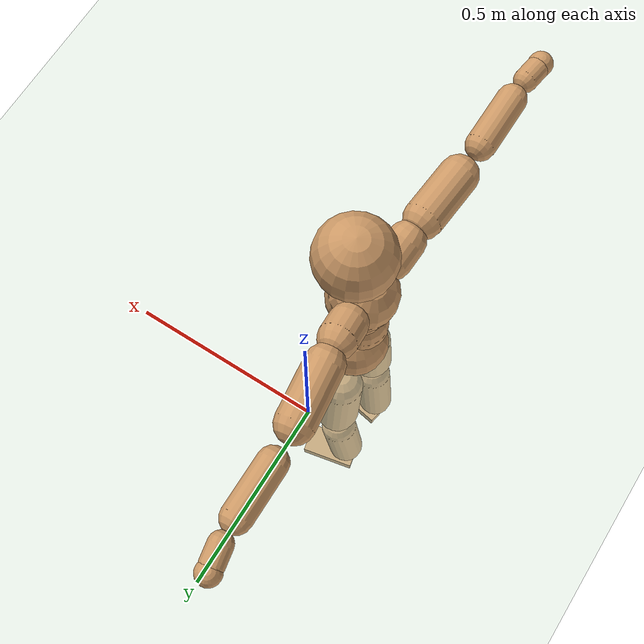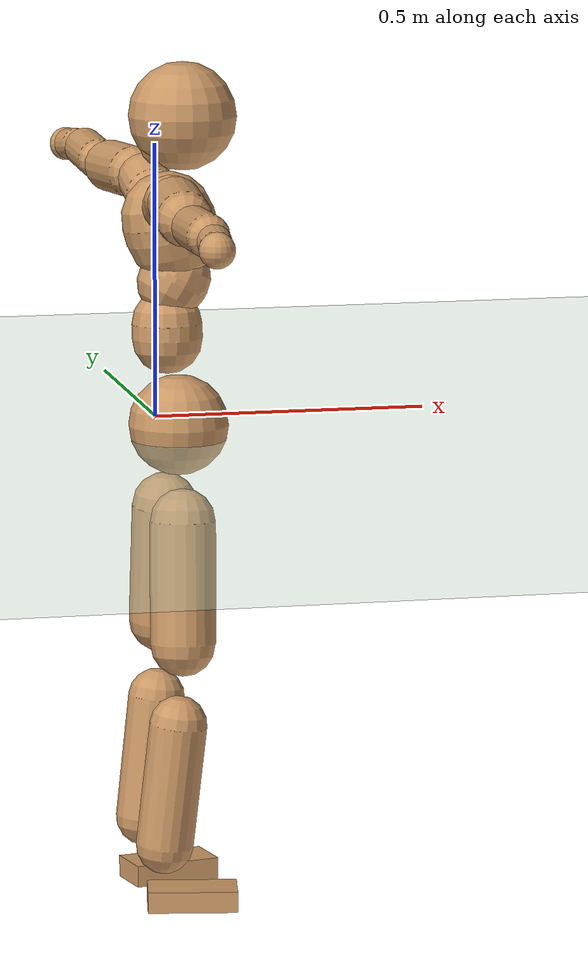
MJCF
<mujoco model="humanoid">
  <compiler coordinate="local"/>
  <default>
    <joint damping="0.0" armature="0.01" stiffness="0.0" limited="true"/>
    <geom conaffinity="1" condim="3" contype="7" margin="0.001" rgba="0.8 0.6 .4 1"/>
  </default>
  <asset>
    <texture type="skybox" builtin="gradient" rgb1=".4 .5 .6" rgb2="0 0 0" width="100" height="100"/>
    <texture builtin="flat" height="1278" mark="cross" markrgb="1 1 1" name="texgeom" random="0.01" rgb1="0.8 0.6 0.4" rgb2="0.8 0.6 0.4" type="cube" width="127"/>
    <texture builtin="checker" height="100" name="texplane" rgb1="0 0 0" rgb2="0.8 0.8 0.8" type="2d" width="100"/>
    <material name="MatPlane" reflectance="0.5" shininess="1" specular="1" texrepeat="60 60" texture="texplane"/>
    <material name="geom" texture="texgeom" texuniform="true"/>
  </asset>
  <worldbody>
    <light cutoff="100" diffuse="1 1 1" dir="-0 0 -1.3" directional="true" exponent="1" pos="0 0 1.3" specular=".1 .1 .1"/>
    <geom conaffinity="1" condim="3" name="floor" pos="0 0 0" rgba="0.8 0.9 0.8 1" size="100 100 .2" type="plane" material="MatPlane"/>
    <body name="Pelvis" pos="-0.0015 -0.2153 0.0239">
      <freejoint name="Pelvis"/>
      <geom type="sphere" contype="1" conaffinity="1" density="500" size="0.0898" pos="0.0000 0.0000 0.0000" name="Pelvis"/>
      <body name="L_Hip" pos="-0.0094 0.069 -0.0894">
        <joint name="L_Hip_x" type="hinge" pos="0 0 0" axis="1 0 0" stiffness="800" damping="80" armature="0.02" range="-180.0000 180.0000"/>
        <joint name="L_Hip_y" type="hinge" pos="0 0 0" axis="0 1 0" stiffness="800" damping="80" armature="0.02" range="-180.0000 180.0000"/>
        <joint name="L_Hip_z" type="hinge" pos="0 0 0" axis="0 0 1" stiffness="800" damping="80" armature="0.02" range="-180.0000 180.0000"/>
        <geom type="capsule" contype="1" conaffinity="1" density="500" fromto="-0.0010 0.0061 -0.0710 -0.0039 0.0243 -0.2841" size="0.0595" name="L_Hip"/>
        <body name="L_Knee" pos="-0.0048 0.0304 -0.3552">
          <joint name="L_Knee_x" type="hinge" pos="0 0 0" axis="1 0 0" stiffness="800" damping="80" armature="0.02" range="-180.0000 180.0000"/>
          <joint name="L_Knee_y" type="hinge" pos="0 0 0" axis="0 1 0" stiffness="800" damping="80" armature="0.02" range="-180.0000 180.0000"/>
          <joint name="L_Knee_z" type="hinge" pos="0 0 0" axis="0 0 1" stiffness="800" damping="80" armature="0.02" range="-180.0000 180.0000"/>
          <geom type="capsule" contype="1" conaffinity="1" density="500" fromto="-0.0084 -0.0022 -0.0740 -0.0335 -0.0089 -0.2960" size="0.0514" name="L_Knee"/>
          <body name="L_Ankle" pos="-0.0419 -0.0112 -0.37">
            <joint name="L_Ankle_x" type="hinge" pos="0 0 0" axis="1 0 0" stiffness="800" damping="80" armature="0.02" range="-180.0000 180.0000"/>
            <joint name="L_Ankle_y" type="hinge" pos="0 0 0" axis="0 1 0" stiffness="800" damping="80" armature="0.02" range="-180.0000 180.0000"/>
            <joint name="L_Ankle_z" type="hinge" pos="0 0 0" axis="0 0 1" stiffness="800" damping="80" armature="0.02" range="-180.0000 180.0000"/>
            <geom type="box" contype="1" conaffinity="1" density="500" pos="0.0555 0.0114 -0.0262" size="0.0792 0.044 0.0194" quat="0.9949 0.0000 0.0000 0.1009" name="L_Ankle"/>
            <body name="L_Toe" pos="0.111 0.0228 -0.0525">
              <joint name="L_Toe_x" type="hinge" pos="0 0 0" axis="1 0 0" stiffness="500" damping="50" armature="0.02" range="-180.0000 180.0000"/>
              <joint name="L_Toe_y" type="hinge" pos="0 0 0" axis="0 1 0" stiffness="500" damping="50" armature="0.02" range="-180.0000 180.0000"/>
              <joint name="L_Toe_z" type="hinge" pos="0 0 0" axis="0 0 1" stiffness="500" damping="50" armature="0.02" range="-180.0000 180.0000"/>
              <geom type="box" contype="1" conaffinity="1" density="500" pos="0.0000 0.0000 0.0258" size="0.0009 0.0022 0.0009" quat="0.9942 0.0000 0.0000 0.1076" name="L_Toe"/>
            </body>
          </body>
        </body>
      </body>
      <body name="R_Hip" pos="-0.0063 -0.0667 -0.0887">
        <joint name="R_Hip_x" type="hinge" pos="0 0 0" axis="1 0 0" stiffness="800" damping="80" armature="0.02" range="-180.0000 180.0000"/>
        <joint name="R_Hip_y" type="hinge" pos="0 0 0" axis="0 1 0" stiffness="800" damping="80" armature="0.02" range="-180.0000 180.0000"/>
        <joint name="R_Hip_z" type="hinge" pos="0 0 0" axis="0 0 1" stiffness="800" damping="80" armature="0.02" range="-180.0000 180.0000"/>
        <geom type="capsule" contype="1" conaffinity="1" density="500" fromto="-0.0015 -0.0070 -0.0725 -0.0060 -0.0282 -0.2899" size="0.0588" name="R_Hip"/>
        <body name="R_Knee" pos="-0.0075 -0.0352 -0.3624">
          <joint name="R_Knee_x" type="hinge" pos="0 0 0" axis="1 0 0" stiffness="800" damping="80" armature="0.02" range="-180.0000 180.0000"/>
          <joint name="R_Knee_y" type="hinge" pos="0 0 0" axis="0 1 0" stiffness="800" damping="80" armature="0.02" range="-180.0000 180.0000"/>
          <joint name="R_Knee_z" type="hinge" pos="0 0 0" axis="0 0 1" stiffness="800" damping="80" armature="0.02" range="-180.0000 180.0000"/>
          <geom type="capsule" contype="1" conaffinity="1" density="500" fromto="-0.0080 0.0027 -0.0740 -0.0321 0.0110 -0.2961" size="0.0517" name="R_Knee"/>
          <body name="R_Ankle" pos="-0.0402 0.0137 -0.3701">
            <joint name="R_Ankle_x" type="hinge" pos="0 0 0" axis="1 0 0" stiffness="800" damping="80" armature="0.02" range="-180.0000 180.0000"/>
            <joint name="R_Ankle_y" type="hinge" pos="0 0 0" axis="0 1 0" stiffness="800" damping="80" armature="0.02" range="-180.0000 180.0000"/>
            <joint name="R_Ankle_z" type="hinge" pos="0 0 0" axis="0 0 1" stiffness="800" damping="80" armature="0.02" range="-180.0000 180.0000"/>
            <geom type="box" contype="1" conaffinity="1" density="500" pos="0.0571 -0.0101 -0.0224" size="0.0804 0.0445 0.019" quat="0.9962 0.0000 0.0000 -0.0873" name="R_Ankle"/>
            <body name="R_Toe" pos="0.1141 -0.0202 -0.0448">
              <joint name="R_Toe_x" type="hinge" pos="0 0 0" axis="1 0 0" stiffness="500" damping="50" armature="0.02" range="-180.0000 180.0000"/>
              <joint name="R_Toe_y" type="hinge" pos="0 0 0" axis="0 1 0" stiffness="500" damping="50" armature="0.02" range="-180.0000 180.0000"/>
              <joint name="R_Toe_z" type="hinge" pos="0 0 0" axis="0 0 1" stiffness="500" damping="50" armature="0.02" range="-180.0000 180.0000"/>
              <geom type="box" contype="1" conaffinity="1" density="500" pos="0.0000 0.0000 0.0243" size="0.0008 0.0022 0.001" quat="0.9970 0.0000 0.0000 -0.0775" name="R_Toe"/>
            </body>
          </body>
        </body>
      </body>
      <body name="Torso" pos="-0.0199 -0.0025 0.1029">
        <joint name="Torso_x" type="hinge" pos="0 0 0" axis="1 0 0" stiffness="1000" damping="100" armature="0.02" range="-180.0000 180.0000"/>
        <joint name="Torso_y" type="hinge" pos="0 0 0" axis="0 1 0" stiffness="1000" damping="100" armature="0.02" range="-180.0000 180.0000"/>
        <joint name="Torso_z" type="hinge" pos="0 0 0" axis="0 0 1" stiffness="1000" damping="100" armature="0.02" range="-180.0000 180.0000"/>
        <geom type="capsule" contype="1" conaffinity="1" density="500" fromto="-0.0006 0.0024 0.0801 -0.0004 0.0016 0.0534" size="0.062868" name="Torso"/>
        <body name="Spine" pos="-0.0011 0.0041 0.1334">
          <joint name="Spine_x" type="hinge" pos="0 0 0" axis="1 0 0" stiffness="1000" damping="100" armature="0.02" range="-180.0000 180.0000"/>
          <joint name="Spine_y" type="hinge" pos="0 0 0" axis="0 1 0" stiffness="1000" damping="100" armature="0.02" range="-180.0000 180.0000"/>
          <joint name="Spine_z" type="hinge" pos="0 0 0" axis="0 0 1" stiffness="1000" damping="100" armature="0.02" range="-180.0000 180.0000"/>
          <geom type="capsule" contype="1" conaffinity="1" density="500" fromto="0.0167 0.0012 0.0297 0.0111 0.0008 0.0198" size="0.06324" name="Spine"/>
          <body name="Chest" pos="0.0278 0.0019 0.0496">
            <joint name="Chest_x" type="hinge" pos="0 0 0" axis="1 0 0" stiffness="1000" damping="100" armature="0.02" range="-180.0000 180.0000"/>
            <joint name="Chest_y" type="hinge" pos="0 0 0" axis="0 1 0" stiffness="1000" damping="100" armature="0.02" range="-180.0000 180.0000"/>
            <joint name="Chest_z" type="hinge" pos="0 0 0" axis="0 0 1" stiffness="1000" damping="100" armature="0.02" range="-180.0000 180.0000"/>
            <geom type="capsule" contype="1" conaffinity="1" density="500" fromto="-0.0244 -0.0009 0.0857 -0.0163 -0.0006 0.0571" size="0.083607" name="Chest"/>
            <body name="Neck" pos="-0.0472 -0.0026 0.2026">
              <joint name="Neck_x" type="hinge" pos="0 0 0" axis="1 0 0" stiffness="500" damping="50" armature="0.02" range="-180.0000 180.0000"/>
              <joint name="Neck_y" type="hinge" pos="0 0 0" axis="0 1 0" stiffness="500" damping="50" armature="0.02" range="-180.0000 180.0000"/>
              <joint name="Neck_z" type="hinge" pos="0 0 0" axis="0 0 1" stiffness="500" damping="50" armature="0.02" range="-180.0000 180.0000"/>
              <geom type="capsule" contype="1" conaffinity="1" density="500" fromto="0.0100 0.0008 0.0128 0.0399 0.0031 0.0511" size="0.036828" name="Neck"/>
              <body name="Head" pos="0.0499 0.0039 0.0638">
                <joint name="Head_x" type="hinge" pos="0 0 0" axis="1 0 0" stiffness="500" damping="50" armature="0.02" range="-180.0000 180.0000"/>
                <joint name="Head_y" type="hinge" pos="0 0 0" axis="0 1 0" stiffness="500" damping="50" armature="0.02" range="-180.0000 180.0000"/>
                <joint name="Head_z" type="hinge" pos="0 0 0" axis="0 0 1" stiffness="500" damping="50" armature="0.02" range="-180.0000 180.0000"/>
                <geom type="sphere" contype="1" conaffinity="1" density="500" size="0.0965" pos="0.0000 0.0000 0.0000" name="Head"/>
              </body>
            </body>
            <body name="L_Thorax" pos="-0.0349 0.0714 0.114">
              <joint name="L_Thorax_x" type="hinge" pos="0 0 0" axis="1 0 0" stiffness="500" damping="50" armature="0.02" range="-180.0000 180.0000"/>
              <joint name="L_Thorax_y" type="hinge" pos="0 0 0" axis="0 1 0" stiffness="500" damping="50" armature="0.02" range="-180.0000 180.0000"/>
              <joint name="L_Thorax_z" type="hinge" pos="0 0 0" axis="0 0 1" stiffness="500" damping="50" armature="0.02" range="-180.0000 180.0000"/>
              <geom type="capsule" contype="1" conaffinity="1" density="500" fromto="-0.0013 0.0161 0.0059 -0.0053 0.0646 0.0235" size="0.047" name="L_Thorax"/>
              <body name="L_Shoulder" pos="-0.0066 0.0807 0.0294">
                <joint name="L_Shoulder_x" type="hinge" pos="0 0 0" axis="1 0 0" stiffness="500" damping="50" armature="0.02" range="-720.0000 720.0000"/>
                <joint name="L_Shoulder_y" type="hinge" pos="0 0 0" axis="0 1 0" stiffness="500" damping="50" armature="0.02" range="-720.0000 720.0000"/>
                <joint name="L_Shoulder_z" type="hinge" pos="0 0 0" axis="0 0 1" stiffness="500" damping="50" armature="0.02" range="-720.0000 720.0000"/>
                <geom type="capsule" contype="1" conaffinity="1" density="500" fromto="-0.0053 0.0478 -0.0020 -0.0211 0.1912 -0.0081" size="0.0471" name="L_Shoulder"/>
                <body name="L_Elbow" pos="-0.0264 0.239 -0.0102">
                  <joint name="L_Elbow_x" type="hinge" pos="0 0 0" axis="1 0 0" stiffness="500" damping="50" armature="0.02" range="-720.0000 720.0000"/>
                  <joint name="L_Elbow_y" type="hinge" pos="0 0 0" axis="0 1 0" stiffness="500" damping="50" armature="0.02" range="-720.0000 720.0000"/>
                  <joint name="L_Elbow_z" type="hinge" pos="0 0 0" axis="0 0 1" stiffness="500" damping="50" armature="0.02" range="-720.0000 720.0000"/>
                  <geom type="capsule" contype="1" conaffinity="1" density="500" fromto="-0.0001 0.0453 0.0016 -0.0004 0.1814 0.0063" size="0.037" name="L_Elbow"/>
                  <body name="L_Wrist" pos="-0.0005 0.2267 0.0078">
                    <joint name="L_Wrist_x" type="hinge" pos="0 0 0" axis="1 0 0" stiffness="300" damping="30" armature="0.02" range="-180.0000 180.0000"/>
                    <joint name="L_Wrist_y" type="hinge" pos="0 0 0" axis="0 1 0" stiffness="300" damping="30" armature="0.02" range="-180.0000 180.0000"/>
                    <joint name="L_Wrist_z" type="hinge" pos="0 0 0" axis="0 0 1" stiffness="300" damping="30" armature="0.02" range="-180.0000 180.0000"/>
                    <geom type="capsule" contype="1" conaffinity="1" density="500" fromto="-0.0025 0.0152 -0.0018 -0.0101 0.0608 -0.0074" size="0.0288" name="L_Wrist"/>
                    <body name="L_Hand" pos="-0.0127 0.076 -0.0092">
                      <joint name="L_Hand_x" type="hinge" pos="0 0 0" axis="1 0 0" stiffness="300" damping="30" armature="0.02" range="-180.0000 180.0000"/>
                      <joint name="L_Hand_y" type="hinge" pos="0 0 0" axis="0 1 0" stiffness="300" damping="30" armature="0.02" range="-180.0000 180.0000"/>
                      <joint name="L_Hand_z" type="hinge" pos="0 0 0" axis="0 0 1" stiffness="300" damping="30" armature="0.02" range="-180.0000 180.0000"/>
                      <geom type="sphere" contype="1" conaffinity="1" density="500" size="0.0308" pos="0.0000 0.0000 0.0000" name="L_Hand"/>
                    </body>
                  </body>
                </body>
              </body>
            </body>
            <body name="R_Thorax" pos="-0.0398 -0.0733 0.112">
              <joint name="R_Thorax_x" type="hinge" pos="0 0 0" axis="1 0 0" stiffness="500" damping="50" armature="0.02" range="-180.0000 180.0000"/>
              <joint name="R_Thorax_y" type="hinge" pos="0 0 0" axis="0 1 0" stiffness="500" damping="50" armature="0.02" range="-180.0000 180.0000"/>
              <joint name="R_Thorax_z" type="hinge" pos="0 0 0" axis="0 0 1" stiffness="500" damping="50" armature="0.02" range="-180.0000 180.0000"/>
              <geom type="capsule" contype="1" conaffinity="1" density="500" fromto="-0.0018 -0.0169 0.0060 -0.0071 -0.0677 0.0242" size="0.0461" name="R_Thorax"/>
              <body name="R_Shoulder" pos="-0.0089 -0.0846 0.0302">
                <joint name="R_Shoulder_x" type="hinge" pos="0 0 0" axis="1 0 0" stiffness="500" damping="50" armature="0.02" range="-720.0000 720.0000"/>
                <joint name="R_Shoulder_y" type="hinge" pos="0 0 0" axis="0 1 0" stiffness="500" damping="50" armature="0.02" range="-720.0000 720.0000"/>
                <joint name="R_Shoulder_z" type="hinge" pos="0 0 0" axis="0 0 1" stiffness="500" damping="50" armature="0.02" range="-720.0000 720.0000"/>
                <geom type="capsule" contype="1" conaffinity="1" density="500" fromto="-0.0038 -0.0465 -0.0022 -0.0152 -0.1861 -0.0087" size="0.0482" name="R_Shoulder"/>
                <body name="R_Elbow" pos="-0.019 -0.2326 -0.0109">
                  <joint name="R_Elbow_x" type="hinge" pos="0 0 0" axis="1 0 0" stiffness="500" damping="50" armature="0.02" range="-720.0000 720.0000"/>
                  <joint name="R_Elbow_y" type="hinge" pos="0 0 0" axis="0 1 0" stiffness="500" damping="50" armature="0.02" range="-720.0000 720.0000"/>
                  <joint name="R_Elbow_z" type="hinge" pos="0 0 0" axis="0 0 1" stiffness="500" damping="50" armature="0.02" range="-720.0000 720.0000"/>
                  <geom type="capsule" contype="1" conaffinity="1" density="500" fromto="-0.0009 -0.0467 0.0015 -0.0034 -0.1866 0.0059" size="0.037" name="R_Elbow"/>
                  <body name="R_Wrist" pos="-0.0043 -0.2333 0.0073">
                    <joint name="R_Wrist_x" type="hinge" pos="0 0 0" axis="1 0 0" stiffness="300" damping="30" armature="0.02" range="-180.0000 180.0000"/>
                    <joint name="R_Wrist_y" type="hinge" pos="0 0 0" axis="0 1 0" stiffness="300" damping="30" armature="0.02" range="-180.0000 180.0000"/>
                    <joint name="R_Wrist_z" type="hinge" pos="0 0 0" axis="0 0 1" stiffness="300" damping="30" armature="0.02" range="-180.0000 180.0000"/>
                    <geom type="capsule" contype="1" conaffinity="1" density="500" fromto="-0.0020 -0.0152 -0.0014 -0.0078 -0.0608 -0.0054" size="0.0293" name="R_Wrist"/>
                    <body name="R_Hand" pos="-0.0098 -0.076 -0.0068">
                      <joint name="R_Hand_x" type="hinge" pos="0 0 0" axis="1 0 0" stiffness="300" damping="30" armature="0.02" range="-180.0000 180.0000"/>
                      <joint name="R_Hand_y" type="hinge" pos="0 0 0" axis="0 1 0" stiffness="300" damping="30" armature="0.02" range="-180.0000 180.0000"/>
                      <joint name="R_Hand_z" type="hinge" pos="0 0 0" axis="0 0 1" stiffness="300" damping="30" armature="0.02" range="-180.0000 180.0000"/>
                      <geom type="sphere" contype="1" conaffinity="1" density="500" size="0.0307" pos="0.0000 0.0000 0.0000" name="R_Hand"/>
                    </body>
                  </body>
                </body>
              </body>
            </body>
          </body>
        </body>
      </body>
    </body>
  </worldbody>
  <actuator>
    <motor name="L_Hip_x" joint="L_Hip_x" gear="500"/>
    <motor name="L_Hip_y" joint="L_Hip_y" gear="500"/>
    <motor name="L_Hip_z" joint="L_Hip_z" gear="500"/>
    <motor name="L_Knee_x" joint="L_Knee_x" gear="500"/>
    <motor name="L_Knee_y" joint="L_Knee_y" gear="500"/>
    <motor name="L_Knee_z" joint="L_Knee_z" gear="500"/>
    <motor name="L_Ankle_x" joint="L_Ankle_x" gear="500"/>
    <motor name="L_Ankle_y" joint="L_Ankle_y" gear="500"/>
    <motor name="L_Ankle_z" joint="L_Ankle_z" gear="500"/>
    <motor name="L_Toe_x" joint="L_Toe_x" gear="500"/>
    <motor name="L_Toe_y" joint="L_Toe_y" gear="500"/>
    <motor name="L_Toe_z" joint="L_Toe_z" gear="500"/>
    <motor name="R_Hip_x" joint="R_Hip_x" gear="500"/>
    <motor name="R_Hip_y" joint="R_Hip_y" gear="500"/>
    <motor name="R_Hip_z" joint="R_Hip_z" gear="500"/>
    <motor name="R_Knee_x" joint="R_Knee_x" gear="500"/>
    <motor name="R_Knee_y" joint="R_Knee_y" gear="500"/>
    <motor name="R_Knee_z" joint="R_Knee_z" gear="500"/>
    <motor name="R_Ankle_x" joint="R_Ankle_x" gear="500"/>
    <motor name="R_Ankle_y" joint="R_Ankle_y" gear="500"/>
    <motor name="R_Ankle_z" joint="R_Ankle_z" gear="500"/>
    <motor name="R_Toe_x" joint="R_Toe_x" gear="500"/>
    <motor name="R_Toe_y" joint="R_Toe_y" gear="500"/>
    <motor name="R_Toe_z" joint="R_Toe_z" gear="500"/>
    <motor name="Torso_x" joint="Torso_x" gear="500"/>
    <motor name="Torso_y" joint="Torso_y" gear="500"/>
    <motor name="Torso_z" joint="Torso_z" gear="500"/>
    <motor name="Spine_x" joint="Spine_x" gear="500"/>
    <motor name="Spine_y" joint="Spine_y" gear="500"/>
    <motor name="Spine_z" joint="Spine_z" gear="500"/>
    <motor name="Chest_x" joint="Chest_x" gear="500"/>
    <motor name="Chest_y" joint="Chest_y" gear="500"/>
    <motor name="Chest_z" joint="Chest_z" gear="500"/>
    <motor name="Neck_x" joint="Neck_x" gear="500"/>
    <motor name="Neck_y" joint="Neck_y" gear="500"/>
    <motor name="Neck_z" joint="Neck_z" gear="500"/>
    <motor name="Head_x" joint="Head_x" gear="500"/>
    <motor name="Head_y" joint="Head_y" gear="500"/>
    <motor name="Head_z" joint="Head_z" gear="500"/>
    <motor name="L_Thorax_x" joint="L_Thorax_x" gear="500"/>
    <motor name="L_Thorax_y" joint="L_Thorax_y" gear="500"/>
    <motor name="L_Thorax_z" joint="L_Thorax_z" gear="500"/>
    <motor name="L_Shoulder_x" joint="L_Shoulder_x" gear="500"/>
    <motor name="L_Shoulder_y" joint="L_Shoulder_y" gear="500"/>
    <motor name="L_Shoulder_z" joint="L_Shoulder_z" gear="500"/>
    <motor name="L_Elbow_x" joint="L_Elbow_x" gear="500"/>
    <motor name="L_Elbow_y" joint="L_Elbow_y" gear="500"/>
    <motor name="L_Elbow_z" joint="L_Elbow_z" gear="500"/>
    <motor name="L_Wrist_x" joint="L_Wrist_x" gear="500"/>
    <motor name="L_Wrist_y" joint="L_Wrist_y" gear="500"/>
    <motor name="L_Wrist_z" joint="L_Wrist_z" gear="500"/>
    <motor name="L_Hand_x" joint="L_Hand_x" gear="500"/>
    <motor name="L_Hand_y" joint="L_Hand_y" gear="500"/>
    <motor name="L_Hand_z" joint="L_Hand_z" gear="500"/>
    <motor name="R_Thorax_x" joint="R_Thorax_x" gear="500"/>
    <motor name="R_Thorax_y" joint="R_Thorax_y" gear="500"/>
    <motor name="R_Thorax_z" joint="R_Thorax_z" gear="500"/>
    <motor name="R_Shoulder_x" joint="R_Shoulder_x" gear="500"/>
    <motor name="R_Shoulder_y" joint="R_Shoulder_y" gear="500"/>
    <motor name="R_Shoulder_z" joint="R_Shoulder_z" gear="500"/>
    <motor name="R_Elbow_x" joint="R_Elbow_x" gear="500"/>
    <motor name="R_Elbow_y" joint="R_Elbow_y" gear="500"/>
    <motor name="R_Elbow_z" joint="R_Elbow_z" gear="500"/>
    <motor name="R_Wrist_x" joint="R_Wrist_x" gear="500"/>
    <motor name="R_Wrist_y" joint="R_Wrist_y" gear="500"/>
    <motor name="R_Wrist_z" joint="R_Wrist_z" gear="500"/>
    <motor name="R_Hand_x" joint="R_Hand_x" gear="500"/>
    <motor name="R_Hand_y" joint="R_Hand_y" gear="500"/>
    <motor name="R_Hand_z" joint="R_Hand_z" gear="500"/>
  </actuator>
  <contact>
    <exclude body1="Torso" body2="Chest"/>
    <exclude body1="Head" body2="Chest"/>
    <exclude body1="R_Knee" body2="R_Toe"/>
    <exclude body1="R_Knee" body2="L_Ankle"/>
    <exclude body1="R_Knee" body2="L_Toe"/>
    <exclude body1="L_Knee" body2="L_Toe"/>
    <exclude body1="L_Knee" body2="R_Ankle"/>
    <exclude body1="L_Knee" body2="R_Toe"/>
    <exclude body1="L_Shoulder" body2="Chest"/>
    <exclude body1="R_Shoulder" body2="Chest"/>
  </contact>
  <sensor/>
  <size njmax="700" nconmax="700"/>
</mujoco>
